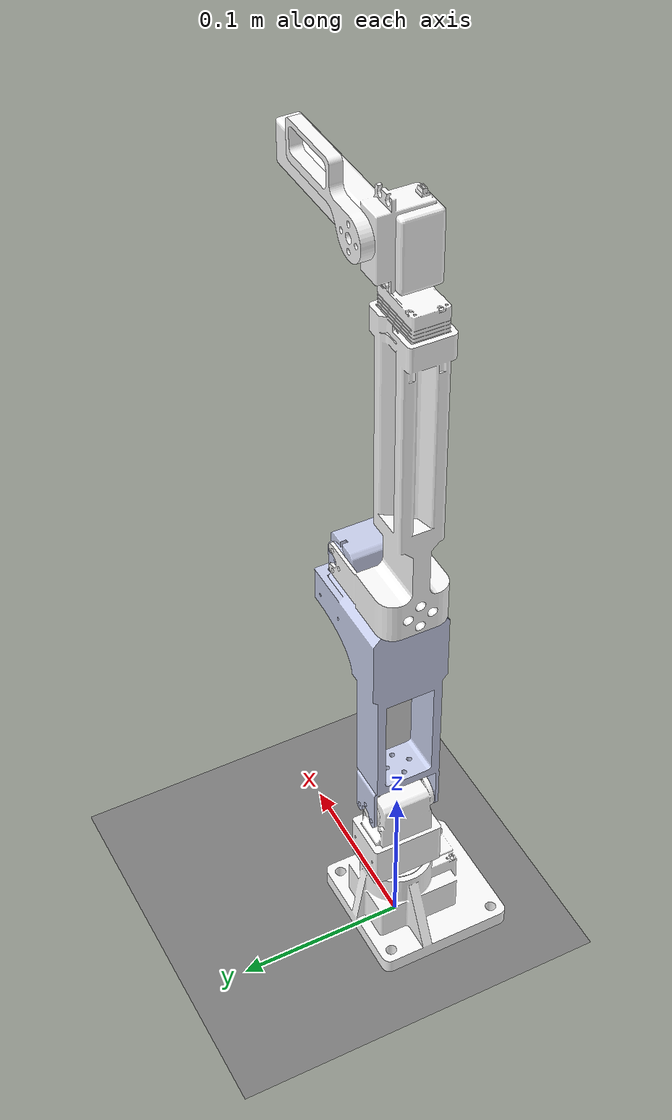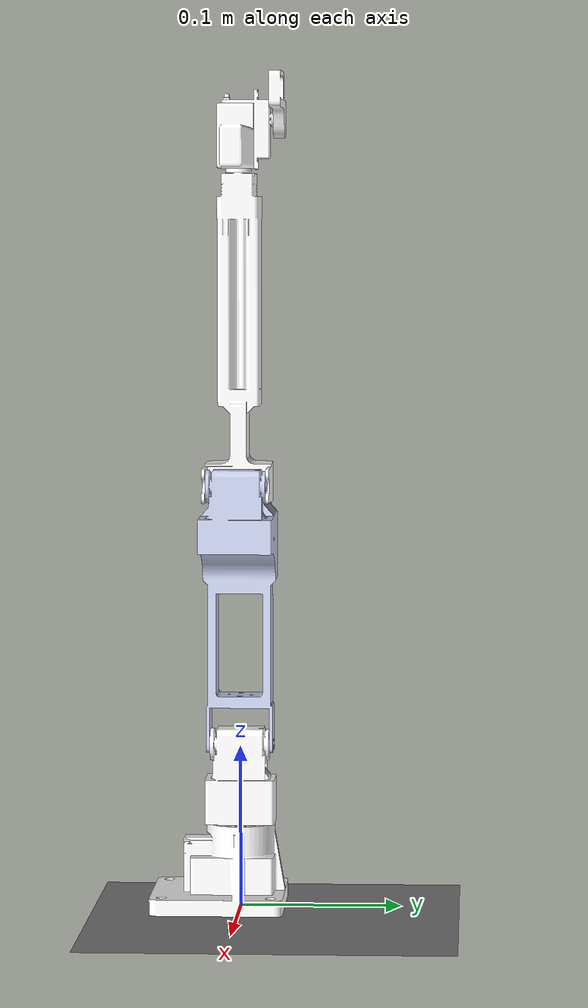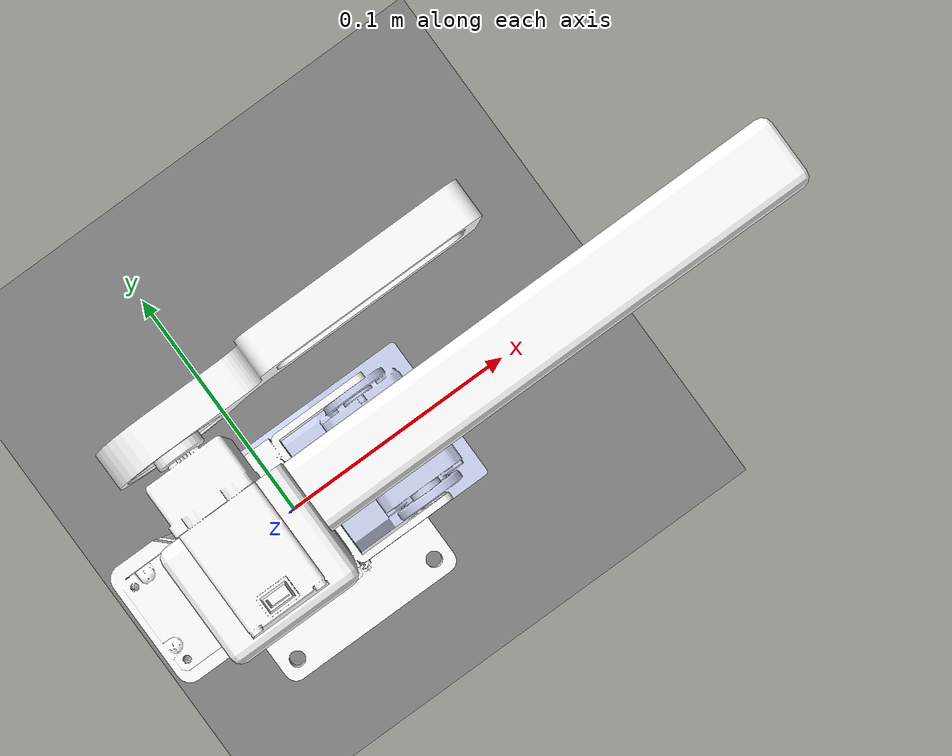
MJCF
<mujoco model="flying_hand_leader">
    <compiler angle="radian" meshdir="meshes/" />
    <size njmax="500" nconmax="100" />
    <asset>
        <mesh name="base_link" file="base_link.STL" />
        <mesh name="link_1" file="link_1.STL" />
        <mesh name="link_2" file="link_2.STL" />
        <mesh name="link_3" file="link_3.STL" />
        <mesh name="link_4" file="link_4.STL" />
        <mesh name="link_5" file="link_5.STL" />
    </asset>
    <worldbody>
      <geom name="floor" pos="0 0 0" size="0 0 0.1" type="plane"/>
        <light directional="true" diffuse=".2 .2 .2" specular="0 0 0" pos="0 0 5" dir="0 0 -1"/>
        <light mode="targetbodycom" directional="false" diffuse=".8 .8 .8" specular="0.3 0.3 0.3" pos="0 0 4.0" dir="0 0 -1"/>
        <geom type="mesh" contype="1" conaffinity="1" group="1" rgba="1 1 1 1" mesh="base_link" />
        <geom type="mesh" rgba="1 1 1 1" mesh="base_link" />
        <body name="link_1" pos="0 0 0.0528">
            <inertial pos="0 -0.00156867 0.0346018" quat="0.999256 0.0385748 0 0" mass="0.08581" diaginertia="3.717e-05 3.01296e-05 1.84204e-05" />
            <joint name="joint_1" pos="0 0 0" axis="0 0 1" limited="true" range="-2.8973 2.8973" />
            <geom type="mesh" contype="1" conaffinity="1" group="1" rgba="1 1 1 1" mesh="link_1" />
            <geom type="mesh" rgba="1 1 1 1" mesh="link_1" />
            <body name="link_2" pos="0 0 0.04861" quat="0 0 0.707107 0.707107">
                <inertial pos="-0.0260946 0.13097 -0.00115046" quat="0.353085 0.517901 -0.473761 0.618595" mass="0.11524" diaginertia="0.000254471 0.000252714 4.03944e-05" />
                <joint name="joint_2" pos="0 0 0" axis="0 0 1" limited="true" range="-1.7628 1.7628" />
                <geom type="mesh" contype="1" conaffinity="1" group="1" rgba="0.79216 0.81961 0.93333 1" mesh="link_2" />
                <geom type="mesh" rgba="0.79216 0.81961 0.93333 1" mesh="link_2" />
                <body name="link_3" pos="-0.03814 0.164 -0.0002">
                    <inertial pos="0.0395021 0.10829 -0.00063991" quat="0.512351 0.486393 -0.512698 0.487912" mass="0.0848" diaginertia="0.000517311 0.000512861 1.8818e-05" />
                    <joint name="joint_3" pos="0 0 0" axis="0 0 1" limited="true" range="0 1.7628" />
                    <geom type="mesh" contype="1" conaffinity="1" group="1" rgba="1 1 1 1" mesh="link_3" />
                    <geom type="mesh" rgba="1 1 1 1" mesh="link_3" />
                    <body name="link_4" pos="0.03582 0.1935 -0.00077" quat="-2.59734e-06 -2.59735e-06 -0.707108 -0.707105">
                        <inertial pos="0.013714 0.00802015 0.0216585" quat="0.529493 0.49279 0.582729 0.370437" mass="0.0542" diaginertia="5.5392e-05 5.31232e-05 1.08948e-05" />
                        <joint name="joint_4" pos="0 0 0" axis="0 0 -1" limited="true" range="-2.8973 2.8973" />
                        <geom type="mesh" contype="1" conaffinity="1" group="1" rgba="1 1 1 1" mesh="link_4" />
                        <geom type="mesh" rgba="1 1 1 1" mesh="link_4" />
                        <body name="link_5" pos="0 0.02485 0.03" quat="0.707105 0.707108 0 0">
                            <inertial pos="0.022967 0.0098954 -0.00083577" quat="-0.122398 0.693845 0.110911 0.700925" mass="0.0036" diaginertia="1.99032e-06 1.7851e-06 2.24577e-07" />
                            <joint name="joint_5" pos="0 0 0" axis="0 0 -1" limited="true" range="-2.8973 2.8973" />
                            <geom type="mesh" contype="1" conaffinity="1" group="1" rgba="1 1 1 1" mesh="link_5" />
                            <geom type="mesh" rgba="1 1 1 1" mesh="link_5" />
                        </body>
                    </body>
                </body>
            </body>
        </body>
    </worldbody>
    <actuator>
      <motor name="motor1" joint="joint_1" gear="1"/>
      <motor name="motor2" joint="joint_2" gear="1"/>
      <motor name="motor3" joint="joint_3" gear="1"/>
      <motor name="motor4" joint="joint_4" gear="1"/>
      <motor name="motor5" joint="joint_5" gear="1"/>
    </actuator>
</mujoco>
